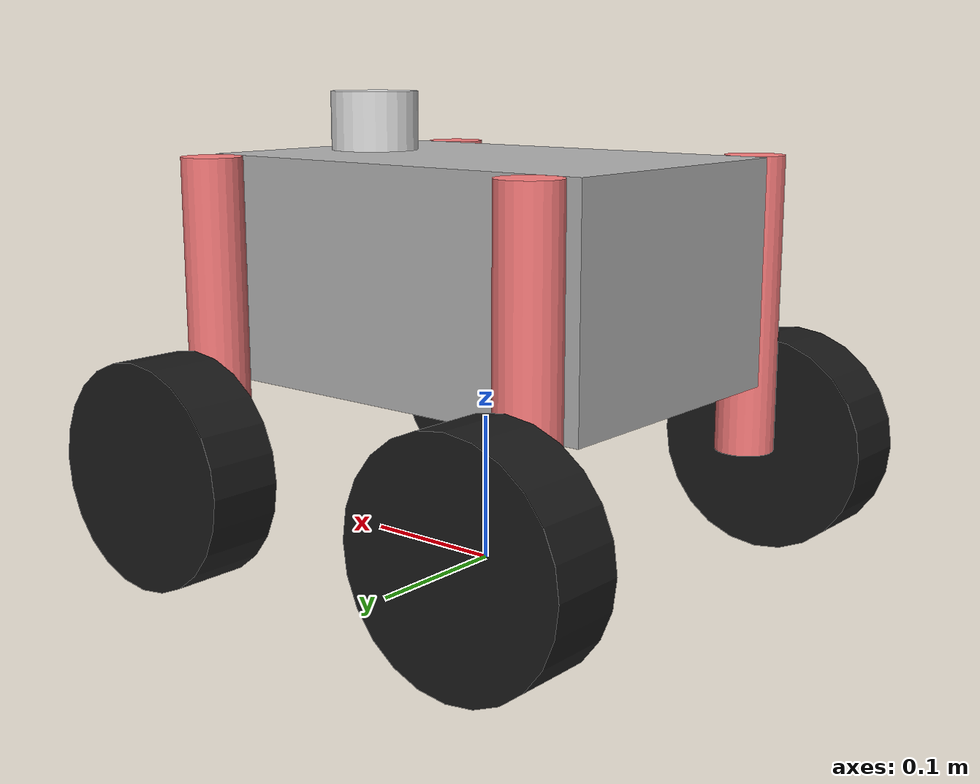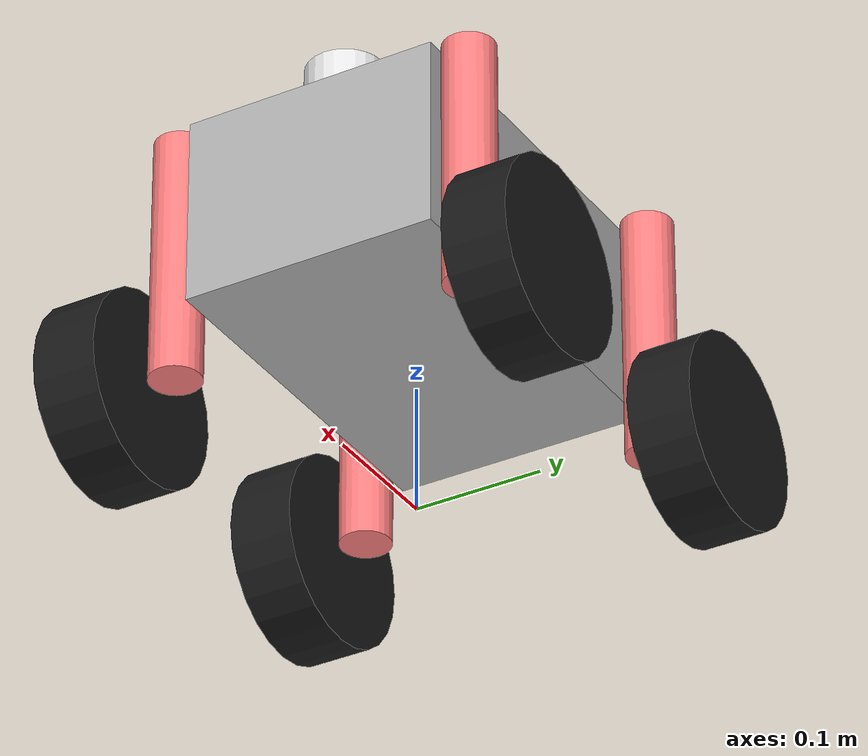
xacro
<?xml version="1.0"?>
<robot xmlns:xacro="http://www.ros.org/wiki/xacro" name="swervebot">
    <xacro:arg name="use_sim" default="false"/>
    <xacro:arg name="use_mock_hardware" default="false"/>
    <xacro:arg name="controller_config" default="$(find swerve_drive_controller)/config/controllers.yaml"/>

    <xacro:property name="use_sim" value="$(arg use_sim)"/>
    <xacro:property name="use_mock_hardware" value="$(arg use_mock_hardware)"/>
    <xacro:property name="controller_config" value="$(arg controller_config)"/>

    <!-- Load configuration once before defining components. -->
    <xacro:include filename="$(find swervebot_description)/description/inertia.xacro" />
    <xacro:include filename="$(find swervebot_description)/description/swervebot_properties.xacro" />
    <xacro:include filename="$(find swervebot_description)/description/swervebot_base.xacro" />
    <xacro:include filename="$(find swervebot_description)/description/swervebot_module.xacro"/>
    <xacro:include filename="$(find swervebot_description)/description/swervebot_ros2_control.xacro"/>
    <xacro:include filename="$(find swervebot_description)/description/swervebot_lidar.xacro"/>
    <xacro:include filename="$(find swervebot_description)/description/swervebot_imu.xacro"/>

    <xacro:swervebot_imu use_sim="${use_sim}"/>

    <!-- Execute/Instantiate the macros -->
    <xacro:swervebot_base />

    <xacro:add_all_swerve_modules/>

    <xacro:if value="${lidar_enabled}">
        <xacro:swervebot_lidar use_sim="${use_sim}" />
    </xacro:if>

    <xacro:robot_control
        use_mock_hardware="${use_mock_hardware}"
        use_sim="${use_sim}"
        controller_config="${controller_config}"
    />
</robot>

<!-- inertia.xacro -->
<robot xmlns:xacro="http://www.ros.org/wiki/xacro">

    <xacro:macro name="box_inertia_values" params="m x y z">
        <inertia ixx="${(1/12) * m * (y*y + z*z)}" ixy="0.0" ixz="0.0"
                    iyy="${(1/12) * m * (x*x + z*z)}" iyz="0.0"
                    izz="${(1/12) * m * (x*x + y*y)}" />
    </xacro:macro>

    <xacro:macro name="cylinder_inertia_values" params="m r h">
        <inertia ixx="${(1/12) * m * (3*r*r + h*h)}" ixy="0.0" ixz="0.0"
                    iyy="${(1/12) * m * (3*r*r + h*h)}" iyz="0.0"
                    izz="${(1/2) * m * (r*r)}" />
    </xacro:macro>

</robot>

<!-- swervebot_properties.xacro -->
<robot xmlns:xacro="http://www.ros.org/wiki/xacro">

  <!-- Global Robot Geometry & Kinematic Parameters -->
  <!-- (Match these with the controller YAML)       -->
  <xacro:property name="wheelbase" value="0.26"/>
  <xacro:property name="track_width" value="0.24"/>

  <!-- Wheel Geometry & Mass -->
  <xacro:property name="wheel_radius" value="0.075"/>
  <xacro:property name="wheel_width" value="0.05"/>
  <xacro:property name="wheel_mass" value="0.5"/>

  <!-- Actuator Geometry & Mass -->
  <xacro:property name="actuator_radius" value="0.02"/>
  <xacro:property name="actuator_height" value="0.2"/>
  <xacro:property name="actuator_mass" value="2.0"/>

  <!-- Chassis Geometry & Mass -->
  <xacro:property name="chassis_length" value="0.3" />
  <xacro:property name="chassis_width" value="0.2" />
  <xacro:property name="chassis_height" value="0.15" />
  <xacro:property name="chassis_mass" value="5.0" />

  <!-- Wheel Offset From Actuator Rotation Axis -->
  <xacro:property name="wheel_offset_x" value="0.0"/>
  <xacro:property name="wheel_offset_y" value="0.045"/>
  <xacro:property name="wheel_offset_z" value="-0.1"/>

  <!-- Actuator Offset In Vertical Direction -->
  <xacro:property name="actuator_offset_z" value="-0.025"/>

  <!-- Chassis Ground Clearance -->
  <xacro:property name="chassis_ground_clearance" value="${wheel_radius - actuator_offset_z - wheel_offset_z - chassis_height/2}" />

  <!-- Lidar Properties: model in all modes, sensor only in simulation. -->
  <xacro:property name="lidar_enabled" value="true"/>
  <xacro:property name="lidar_parent" value="base_link"/>
  <xacro:property name="lidar_rpy" value="0 0 0"/>
  <xacro:property name="lidar_topic" value="/scan"/>
  <xacro:property name="lidar_update_rate" value="10"/>
  <xacro:property name="lidar_radius" value="0.03"/>
  <xacro:property name="lidar_height" value="0.04"/>
  <xacro:property name="lidar_mass" value="0.1"/>
  <xacro:property name="lidar_samples" value="500"/>
  <xacro:property name="lidar_angle_res" value="1"/>
  <xacro:property name="lidar_min_angle" value="${-pi}"/>
  <xacro:property name="lidar_max_angle" value="${pi}"/>
  <xacro:property name="lidar_min_range" value="0.05"/>
  <xacro:property name="lidar_max_range" value="12.0"/>
  <xacro:property name="lidar_range_res" value="0.01"/>

  <!-- Lidar Position -->
  <xacro:property name="lidar_x" value="0.1"/>
  <xacro:property name="lidar_y" value="0.0"/>
  <xacro:property name="lidar_z" value="${chassis_height / 2 + lidar_height / 2}"/>

  <!--   ~ LIMITS ~    -->
  <!-- Actuator Limits -->
  <!--  (In radians)   -->
  <xacro:property name="actuator_pos_min" value="${-pi/2}"/>
  <xacro:property name="actuator_pos_max" value="${pi/2}"/>

  <!-- Simulation design limits, not measured physical actuator specifications. -->
  <xacro:property name="actuator_velocity_limit" value="10.0"/>
  <xacro:property name="actuator_effort_limit" value="10.0"/>
  <xacro:property name="wheel_velocity_limit" value="30.0"/>
  <xacro:property name="wheel_effort_limit" value="10.0"/>

  <!-- Material & Visual Properties -->
  <xacro:property name="wheel_color" value="0.1 0.1 0.1 1.0"/>
  <xacro:property name="chassis_color" value="0.7 0.7 0.7 1.0"/>
  <xacro:property name="actuator_color" value="1 0.5 0.5 1.0" />
  <xacro:property name="lidar_color" value="0.9 0.9 0.9 1.0" />

  <!--                 Module Names                 -->
  <!-- (These will have prefixes and sufixes added) -->
  <xacro:property name="module_1" value="front_left"/>
  <xacro:property name="module_2" value="front_right"/>
  <xacro:property name="module_3" value="back_left"/>
  <xacro:property name="module_4" value="back_right"/>

  <!-- Per-module placement: chassis-relative pivots and steering-relative wheels. -->
  <xacro:property name="module_1_x" value="${1 * wheelbase / 2}"/>
  <xacro:property name="module_1_y" value="${1 * track_width / 2}"/>
  <xacro:property name="module_1_z" value="${actuator_offset_z}"/>
  <xacro:property name="module_1_wheel_x" value="${1 * wheel_offset_x}"/>
  <xacro:property name="module_1_wheel_y" value="${1 * wheel_offset_y}"/>
  <xacro:property name="module_1_wheel_z" value="${wheel_offset_z}"/>
  <xacro:property name="module_2_x" value="${1 * wheelbase / 2}"/>
  <xacro:property name="module_2_y" value="${-1 * track_width / 2}"/>
  <xacro:property name="module_2_z" value="${actuator_offset_z}"/>
  <xacro:property name="module_2_wheel_x" value="${1 * wheel_offset_x}"/>
  <xacro:property name="module_2_wheel_y" value="${-1 * wheel_offset_y}"/>
  <xacro:property name="module_2_wheel_z" value="${wheel_offset_z}"/>
  <xacro:property name="module_3_x" value="${-1 * wheelbase / 2}"/>
  <xacro:property name="module_3_y" value="${1 * track_width / 2}"/>
  <xacro:property name="module_3_z" value="${actuator_offset_z}"/>
  <xacro:property name="module_3_wheel_x" value="${-1 * wheel_offset_x}"/>
  <xacro:property name="module_3_wheel_y" value="${1 * wheel_offset_y}"/>
  <xacro:property name="module_3_wheel_z" value="${wheel_offset_z}"/>
  <xacro:property name="module_4_x" value="${-1 * wheelbase / 2}"/>
  <xacro:property name="module_4_y" value="${-1 * track_width / 2}"/>
  <xacro:property name="module_4_z" value="${actuator_offset_z}"/>
  <xacro:property name="module_4_wheel_x" value="${-1 * wheel_offset_x}"/>
  <xacro:property name="module_4_wheel_y" value="${-1 * wheel_offset_y}"/>
  <xacro:property name="module_4_wheel_z" value="${wheel_offset_z}"/>

  <!-- Board mounting relative to base_link; simulation design defaults. -->
  <xacro:property name="imu_xyz" value="0 0 0"/>
  <xacro:property name="imu_rpy" value="0 0 0"/>
  <xacro:property name="imu_rate" value="100"/>
  <xacro:property name="mag_rate" value="25"/>
</robot>

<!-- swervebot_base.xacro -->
<robot xmlns:xacro="http://www.ros.org/wiki/xacro">
    <!-- Configuration and inertia helpers are loaded by the assembly entrypoint. -->

    <xacro:macro name="swervebot_base" params="length:=${chassis_length} width:=${chassis_width} height:=${chassis_height} mass:=${chassis_mass}" >

        <link name="base_footprint" />

        <joint name="base_footprint_joint" type="fixed">
            <parent link="base_footprint" />
            <child link="base_link" />
            <origin xyz="0 0 ${chassis_ground_clearance + (chassis_height/2)}" rpy="0 0 0" />
        </joint>

        <link name="base_link" />

        <joint name="chassis_joint" type="fixed">
            <parent link="base_link" />
            <child link="chassis" />
            <origin xyz="0 0 0" rpy="0 0 0" />
        </joint>

        <link name="chassis">
            <visual>
                <origin xyz="0 0 0" rpy="0 0 0" />
                <geometry>
                    <box size="${length} ${width} ${height}" />
                </geometry>
                <material name="chassis_material">
                    <color rgba="${chassis_color}" />
                </material>
            </visual>
            <collision>
                <origin xyz="0 0 0" rpy="0 0 0" />
                <geometry>
                    <box size="${length} ${width} ${height}" />
                </geometry>
            </collision>

            <inertial>
                <origin xyz="0 0 0" rpy="0 0 0" />
                <mass value="${mass}" />
                <xacro:box_inertia_values m="${mass}" x="${length}" y="${width}" z="${height}" />
            </inertial>
        </link>
    </xacro:macro>
</robot>

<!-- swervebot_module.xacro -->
<robot xmlns:xacro="http://www.ros.org/wiki/xacro">
    <!-- Include subsystem files -->
    <xacro:include filename="$(find swervebot_description)/description/swervebot_wheel.xacro" />
    <xacro:include filename="$(find swervebot_description)/description/swervebot_actuator.xacro" />

    <!--          Create One Swerve Module            -->

    <xacro:macro name="add_swerve_module" params="name actuator_x actuator_y actuator_z wheel_x wheel_y wheel_z parent_link:=chassis">

        <xacro:swervebot_actuator
            name="actuator_${name}"
            x="${actuator_x}"
            y="${actuator_y}"
            z="${actuator_z}"
            parent_link="${parent_link}" />

        <xacro:swervebot_wheel
            name="wheel_${name}"
            x="${wheel_x}"
            y="${wheel_y}"
            z="${wheel_z}"
            parent_link="actuator_${name}" />

    </xacro:macro>

    <!--       Create All Four Swerve Modules         -->
    <!-- Change the module name here and make sure it -->
    <!-- matches the controllers.yaml with prefix     -->
    <!-- from above and suffix "_joint"    -->

    <xacro:macro name="add_all_swerve_modules">

        <!-- Front Left -->
        <xacro:add_swerve_module
            name="${module_1}"
            actuator_x="${module_1_x}"
            actuator_y="${module_1_y}"
            actuator_z="${module_1_z}"
            wheel_x="${module_1_wheel_x}"
            wheel_y="${module_1_wheel_y}"
            wheel_z="${module_1_wheel_z}"/>

        <!-- Front Right -->
        <xacro:add_swerve_module
            name="${module_2}"
            actuator_x="${module_2_x}"
            actuator_y="${module_2_y}"
            actuator_z="${module_2_z}"
            wheel_x="${module_2_wheel_x}"
            wheel_y="${module_2_wheel_y}"
            wheel_z="${module_2_wheel_z}"/>

        <!-- Back Left -->
        <xacro:add_swerve_module
            name="${module_3}"
            actuator_x="${module_3_x}"
            actuator_y="${module_3_y}"
            actuator_z="${module_3_z}"
            wheel_x="${module_3_wheel_x}"
            wheel_y="${module_3_wheel_y}"
            wheel_z="${module_3_wheel_z}"/>

        <!-- Back Right -->
        <xacro:add_swerve_module
            name="${module_4}"
            actuator_x="${module_4_x}"
            actuator_y="${module_4_y}"
            actuator_z="${module_4_z}"
            wheel_x="${module_4_wheel_x}"
            wheel_y="${module_4_wheel_y}"
            wheel_z="${module_4_wheel_z}"/>

    </xacro:macro>

</robot>

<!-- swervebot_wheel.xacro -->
<robot xmlns:xacro="http://www.ros.org/wiki/xacro">
    <!-- Configuration and inertia helpers are loaded by the assembly entrypoint. -->

    <xacro:macro name="swervebot_wheel" params="name x y z parent_link radius:=${wheel_radius} width:=${wheel_width} mass:=${wheel_mass}">

        <joint name="${name}_joint" type="continuous">
            <parent link="${parent_link}" />
            <child link="${name}" />
            <origin xyz="${x} ${y} ${z}" rpy="${-pi/2} 0 0" />
            <!-- Rotate local +z onto body +y: positive wheel rotation rolls body +x. -->
            <axis xyz="0 0 1" />
            <limit effort="${wheel_effort_limit}" velocity="${wheel_velocity_limit}"/>
        </joint>

        <link name="${name}">
            <visual>
                <origin xyz="0 0 0" rpy="0 0 0" />
                <geometry>
                    <cylinder radius="${radius}" length="${width}" />
                </geometry>
                <material name="wheel_material">
                    <color rgba="${wheel_color}" />
                </material>
            </visual>
            <collision>
                <origin xyz="0 0 0" rpy="0 0 0" />
                <geometry>
                    <cylinder radius="${radius}" length="${width}" />
                </geometry>
            </collision>

            <inertial>
                <origin xyz="0 0 0" rpy="0 0 0" />
                <mass value="${mass}" />
                <xacro:cylinder_inertia_values m="${mass}" r="${radius}" h="${width}" />
            </inertial>
        </link>

        <!-- Gazebo simulation parameters for wheel compliance and feedback -->
        <xacro:if value="${use_sim}">
            <gazebo reference="${name}">
                <mu1>0.8</mu1>
                <mu2>0.5</mu2>
                <kp>1000000.0</kp>
                <kd>100.0</kd>
                <min_depth>0.001</min_depth>
                <max_vel>0.1</max_vel>
            </gazebo>
        </xacro:if>

    </xacro:macro>
</robot>

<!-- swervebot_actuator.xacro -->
<robot xmlns:xacro="http://www.ros.org/wiki/xacro">
    <!-- Configuration and inertia helpers are loaded by the assembly entrypoint. -->

    <xacro:macro name="swervebot_actuator" params="name x y z parent_link radius:=${actuator_radius} height:=${actuator_height} mass:=${actuator_mass}">

        <joint name="${name}_joint" type="revolute">
            <parent link="${parent_link}" />
            <child link="${name}" />
            <origin xyz="${x} ${y} ${z}" rpy="0 0 0" />
            <axis xyz="0 0 1" />
            <!-- Mechanical travel must agree with the ros2_control command bounds. -->
            <limit lower="${actuator_pos_min}" upper="${actuator_pos_max}"
                   velocity="${actuator_velocity_limit}" effort="${actuator_effort_limit}"/>
        </joint>

        <link name="${name}">
            <visual>
                <origin xyz="0 0 0" rpy="0 0 0" />
                <geometry>
                    <cylinder radius="${radius}" length="${height}" />
                </geometry>
                <material name="actuator_material">
                    <color rgba="${actuator_color}" />
                </material>
            </visual>
            <collision>
                <origin xyz="0 0 0" rpy="0 0 0" />
                <geometry>
                    <cylinder radius="${radius}" length="${height}" />
                </geometry>
            </collision>
            <inertial>
                <origin xyz="0 0 0" rpy="0 0 0" />
                <mass value="${mass}" />
                <xacro:cylinder_inertia_values m="${mass}" r="${radius}" h="${height}" />
            </inertial>
        </link>

    </xacro:macro>
</robot>

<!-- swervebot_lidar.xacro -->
<robot xmlns:xacro="http://www.ros.org/wiki/xacro">
    <!-- Mount pose is parent-relative; base_link is at the chassis center. -->
    <xacro:macro name="swervebot_lidar" params="use_sim parent_link:=${lidar_parent} xyz:='${lidar_x} ${lidar_y} ${lidar_z}' rpy:=${lidar_rpy} radius:=${lidar_radius} height:=${lidar_height} mass:=${lidar_mass}">
        <link name="laser_frame">
            <visual>
                <geometry><cylinder radius="${radius}" length="${height}"/></geometry>
                <material name="lidar_material"><color rgba="${lidar_color}"/></material>
            </visual>
            <collision>
                <geometry><cylinder radius="${radius}" length="${height}"/></geometry>
            </collision>
            <inertial>
                <mass value="${mass}"/>
                <xacro:cylinder_inertia_values m="${mass}" r="${radius}" h="${height}"/>
            </inertial>
        </link>
        <joint name="laser_joint" type="fixed">
            <parent link="${parent_link}"/>
            <child link="laser_frame"/>
            <origin xyz="${xyz}" rpy="${rpy}"/>
        </joint>
        <xacro:if value="${use_sim}">
            <gazebo reference="laser_frame">
                <sensor name="rplidar_c1" type="gpu_lidar">
                    <topic>${lidar_topic}</topic>
                    <!-- Keep the ROS frame stable after Gazebo fixed-joint reduction. -->
                    <frame_id>laser_frame</frame_id>
                    <visualize>true</visualize>
                    <update_rate>${lidar_update_rate}</update_rate>
                    <ray>
                        <scan>
                            <horizontal>
                                <samples>${lidar_samples}</samples>
                                <resolution>${lidar_angle_res}</resolution>
                                <min_angle>${lidar_min_angle}</min_angle>
                                <max_angle>${lidar_max_angle}</max_angle>
                            </horizontal>
                        </scan>
                        <range>
                            <min>${lidar_min_range}</min>
                            <max>${lidar_max_range}</max>
                            <resolution>${lidar_range_res}</resolution>
                        </range>
                    </ray>
                </sensor>
            </gazebo>
        </xacro:if>
    </xacro:macro>
</robot>

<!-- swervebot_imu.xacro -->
<robot xmlns:xacro="http://www.ros.org/wiki/xacro">
  <xacro:macro name="swervebot_imu" params="use_sim">
    <link name="imu_link">
      <visual><geometry><box size="0.02 0.02 0.003"/></geometry></visual>
      <inertial><mass value="0.002"/><inertia ixx="0.00000007" ixy="0" ixz="0" iyy="0.00000007" iyz="0" izz="0.00000013"/></inertial>
    </link>
    <joint name="imu_joint" type="fixed">
      <parent link="base_link"/><child link="imu_link"/>
      <origin xyz="${imu_xyz}" rpy="${imu_rpy}"/>
    </joint>
    <xacro:if value="${use_sim}">
      <gazebo reference="imu_joint"><preserveFixedJoint>true</preserveFixedJoint></gazebo>
      <gazebo reference="imu_link">
        <sensor name="board_imu" type="imu">
          <always_on>true</always_on><update_rate>${imu_rate}</update_rate>
          <topic>/imu/data_raw</topic><frame_id>imu_link</frame_id>
          <imu>
            <angular_velocity>
              <x><noise type="gaussian"><mean>0</mean><stddev>0.001</stddev></noise></x>
              <y><noise type="gaussian"><mean>0</mean><stddev>0.001</stddev></noise></y>
              <z><noise type="gaussian"><mean>0</mean><stddev>0.001</stddev></noise></z>
            </angular_velocity>
            <linear_acceleration>
              <x><noise type="gaussian"><mean>0</mean><stddev>0.01</stddev></noise></x>
              <y><noise type="gaussian"><mean>0</mean><stddev>0.01</stddev></noise></y>
              <z><noise type="gaussian"><mean>0</mean><stddev>0.01</stddev></noise></z>
            </linear_acceleration>
          </imu>
        </sensor>
        <sensor name="board_magnetometer" type="magnetometer">
          <always_on>true</always_on><update_rate>${mag_rate}</update_rate>
          <topic>/imu/mag</topic><frame_id>imu_link</frame_id>
          <magnetometer>
            <x><noise type="gaussian"><mean>0</mean><stddev>0.0000002</stddev></noise></x>
            <y><noise type="gaussian"><mean>0</mean><stddev>0.0000002</stddev></noise></y>
            <z><noise type="gaussian"><mean>0</mean><stddev>0.0000002</stddev></noise></z>
          </magnetometer>
        </sensor>
      </gazebo>
    </xacro:if>
  </xacro:macro>
</robot>
